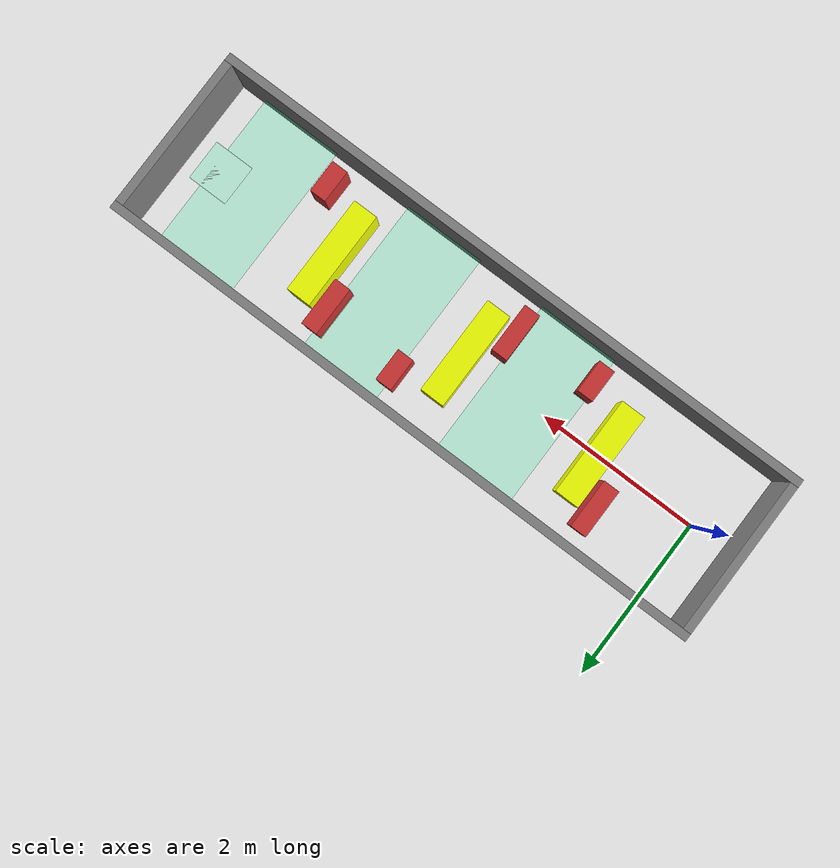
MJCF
<mujoco>
  <option timestep="0.01" integrator="RK4" />

  <worldbody>

    <body name="wall_1" pos="1.0 0.5 0.25">
      <geom name="wall_1" type="box" size="0.1 0.3 0.25" mass=".1" material="static" condim="4" />
    </body>

    <body name="wall_2" pos="1.8 -0.6 .25">
      <geom name="wall_2" type="box" size="0.1 0.2 0.25" mass=".1" material="static" condim="4" />
    </body>

    <body name="movable_cube1" pos="1.3 0 .25" euler="0 0 0">
      <freejoint />
      <geom name="movable_cube1" type="box" size="0.15 0.6 0.25" mass=".1" material="movable"
        condim="4" />
    </body>

    <body name="wall_3" pos="2.8 -0.5 0.25">
      <geom name="wall_3" type="box" size="0.1 0.3 0.25" mass=".1" material="static" condim="4" />
    </body>

    <body name="wall_4" pos="3.6 0.6 .25">
      <geom name="wall_4" type="box" size="0.1 0.2 0.25" mass=".1" material="static" condim="4" />
    </body>

    <body name="movable_cube2" pos="3.1 0 .25" euler="0 0 0">
      <freejoint />
      <geom name="movable_cube2" type="box" size="0.15 0.6 0.25" mass=".1" material="movable"
        condim="4" />
    </body>

    <body name="wall_5" pos="4.6 0.5 .25">
      <geom name="wall_5" type="box" size="0.1 0.3 0.25" mass=".1" material="static" condim="4" />
    </body>

    <body name="wall_6" pos="5.4 -0.6 0.25">
      <geom name="wall_6" type="box" size="0.1 0.2 0.25" mass=".1" material="static" condim="4" />
    </body>

    <body name="movable_cube3" pos="4.9 0 .25" euler="0 0 0">
      <freejoint />
      <geom name="movable_cube3" type="box" size="0.15 0.6 0.25" mass=".1" material="movable"
        condim="4" />
    </body>

    <body name="case" pos="0 0 0.1">
      <geom name="gcase_a" type="box" size="0.05 0.95 0.4" pos="-0.5 0 0.2" />
      <geom name="gcase_b" type="box" size="0.05 0.95 0.4" pos="7.0 0 0.2" />
      <geom name="gcase_c" type="box" size="3.8 0.05 0.4" pos="3.25 1 0.2" />
      <geom name="gcase_d" type="box" size="3.8 0.05 0.4" pos="3.25 -1 0.2" />
    </body>

    <site name="target2" type="box" pos="2.25 0.0 0.1" size="0.5 1.0" rgba="0 1 0.6 0.2" />
    <site name="target3" type="box" pos="4.1 -0.0 0.1" size="0.5 1.0" rgba="0 1 0.6 0.2" />
    <site name="target4" type="box" pos="6.1 0.0 0.1" size="0.5 1.0" rgba="0 1 0.6 0.2" />
    <site name="target5" type="box" pos="6.5 0 0.1" size="0.25 0.25" rgba="0 1 0.6 0.2" />

  </worldbody>

  <asset>
    <!-- Materials for visualization -->
    <material name="movable" rgba="0.94 1.0 0.0 1" />
    <material name="static" rgba="0.8 0.2 0.2 1" />

  </asset>

</mujoco>
